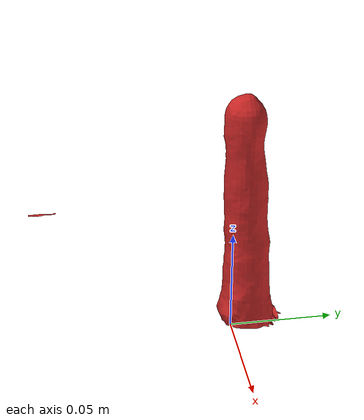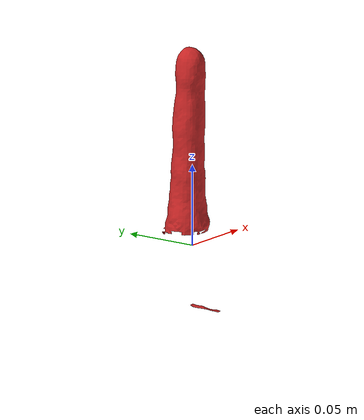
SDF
<?xml version='1.0'?>
<sdf version="1.4">
  <model name="expo_marker_red">
    <static>false</static>
    <link name="link">
      <inertial>
        <pose>-0.02716767358155676 -0.01970494737731172 0.04403338446500767 -1.09920212407771 0.036779966038389435 -0.8524873675638888</pose>
        <mass>0.018957438299096643</mass>
        <inertia>
          <ixx>3.727682381977873e-05</ixx>
          <ixy>5.202783437696738e-22</ixy>
          <ixz>3.9421029626021e-21</ixz>
          <iyy>2.7678187533292496e-05</iyy>
          <iyz>-2.848251411913214e-21</iyz>
          <izz>1.0938414815958133e-05</izz>
        </inertia>
      </inertial>
      <collision name="collision">
        <geometry>
          <mesh>
            <!-- Use a downsampled mesh for collisions -->
            <uri>model:///expo_marker_red/expo_marker_red_250_collision.obj</uri>
	        </mesh>
        </geometry>
        <surface>
      </surface>
      </collision>
      <visual name="visual">
        <geometry>
          <mesh>
            <uri>model:///expo_marker_red/optimized_tsdf_texture_mapped_mesh.obj</uri>
	        </mesh>
        </geometry>
        <material>
          <script>
            <uri>model:///expo_marker_red/expo_marker_red.material</uri>
            <name>expo_marker_red</name>
          </script>
        </material>
      </visual>
    </link>
  </model>
</sdf>
